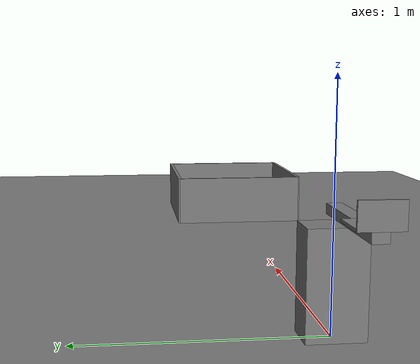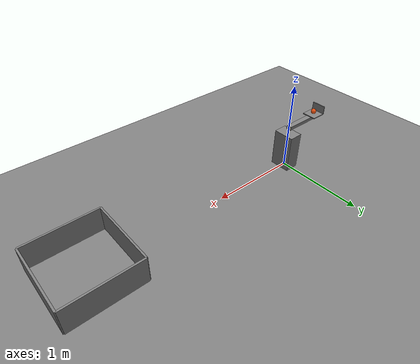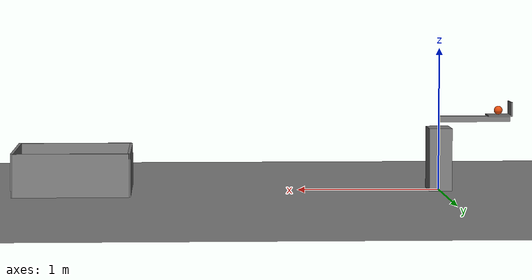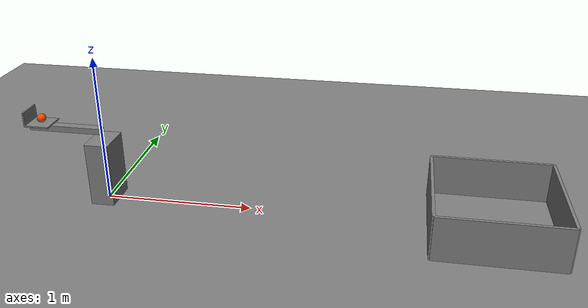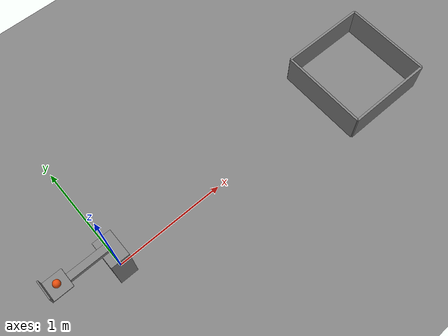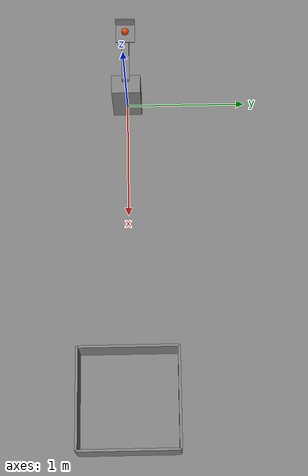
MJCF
<mujoco model="catapult_into_a_bucket">
  <compiler angle="radian"/>
  <option timestep="0.002"/>
  <worldbody>
    <geom name="floor" type="plane" size="8 8 0.1" friction="0.8 0.005 0.002"/>
    <geom name="catapult_stand" type="box" pos="0 0 0.22" size="0.08 0.12 0.22"/>
    <body name="catapult" pos="0 0 0.5">
      <joint name="catapult_hinge" type="hinge" pos="0 0 0" axis="0 1 0" limited="true" range="0 0.698132" stiffness="7.5" springref="1.5708" damping="0.01" armature="0.01"/>
      <geom name="catapult_arm" type="box" pos="-0.25 0 0" size="0.25 0.03 0.02" mass="0.3"/>
      <geom name="catapult_scoop_base" type="box" pos="-0.42 0 0.025" size="0.08 0.08 0.005" mass="0.02"/>
      <geom name="catapult_scoop_back" type="box" pos="-0.505 0 0.07" size="0.005 0.08 0.05" mass="0.01"/>
    </body>
    <body name="ball" pos="-0.42 0 0.56">
      <freejoint/>
      <geom name="ball" type="sphere" pos="0 0 0" size="0.03" mass="0.1" friction="0.8 0.01 0.004" solref="0.01 1" rgba="0.9 0.3 0.05 1"/>
    </body>
    <body name="bucket">
      <geom name="bucket_base" type="box" pos="2.58 0 0.01" size="0.4 0.4 0.01"/>
      <geom name="bucket_near_wall" type="box" pos="2.18 0 0.15" size="0.01 0.4 0.15"/>
      <geom name="bucket_far_wall" type="box" pos="2.98 0 0.15" size="0.01 0.4 0.15"/>
      <geom name="bucket_left_wall" type="box" pos="2.58 0.4 0.15" size="0.4 0.01 0.15"/>
      <geom name="bucket_right_wall" type="box" pos="2.58 -0.4 0.15" size="0.4 0.01 0.15"/>
    </body>
  </worldbody>
  <keyframe>
    <key name="start" qpos="0 -0.42 0 0.56 1 0 0 0" qvel="0 0 0 0 0 0 0"/>
  </keyframe>
</mujoco>
